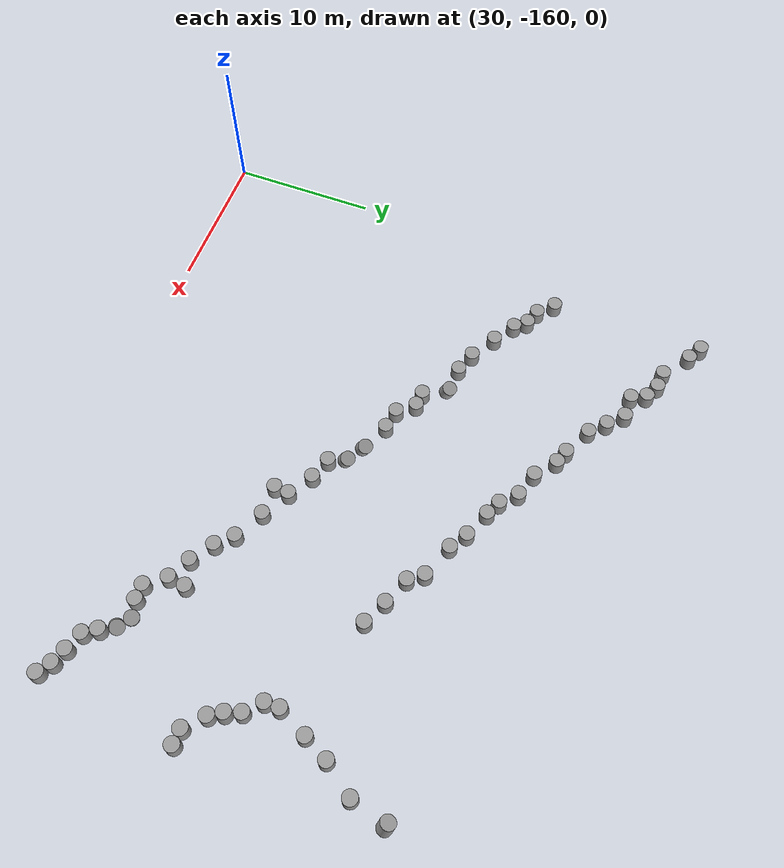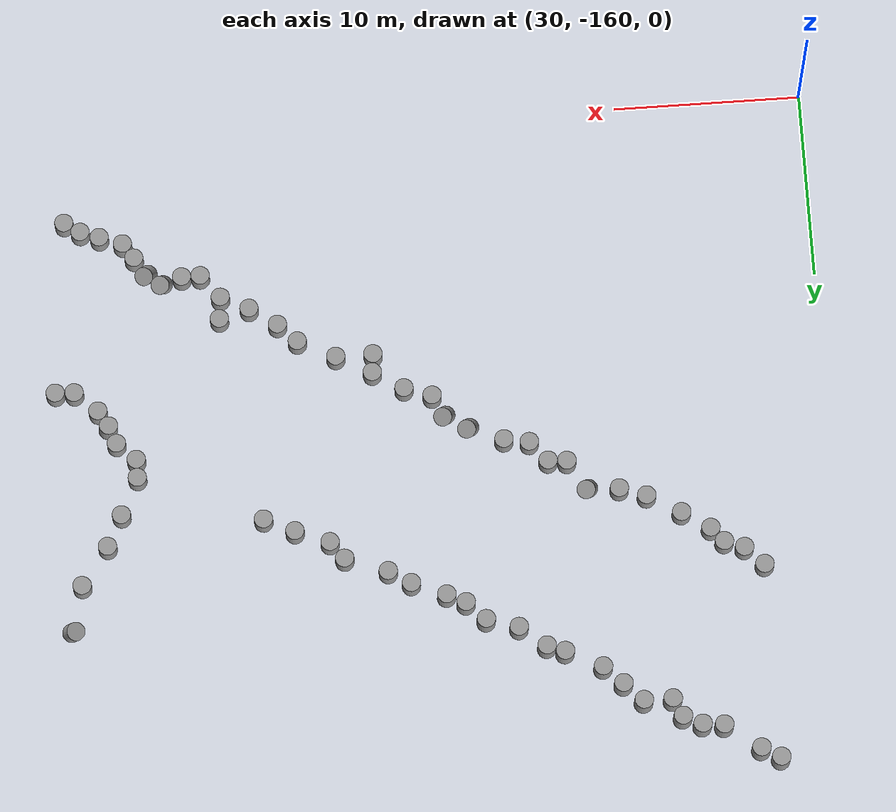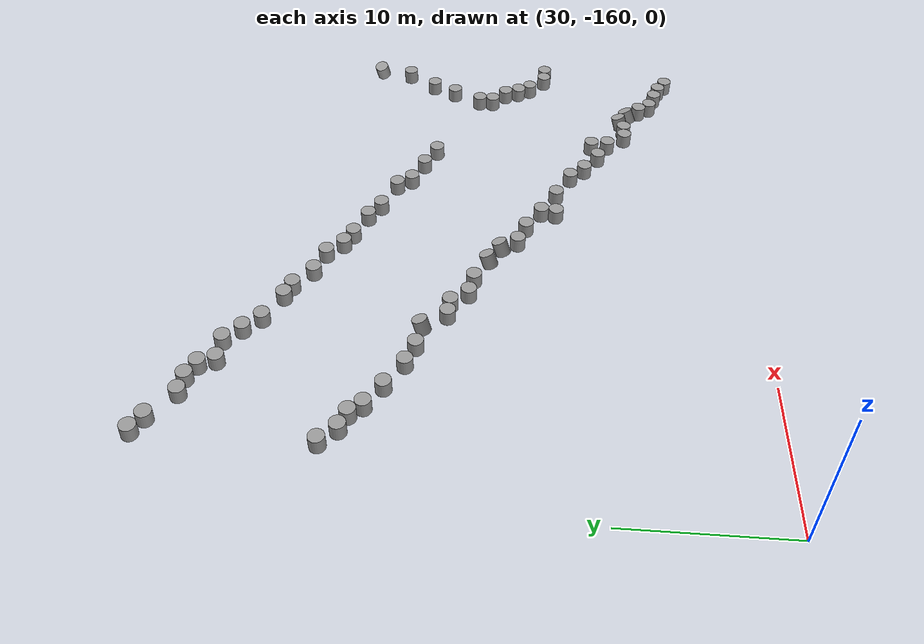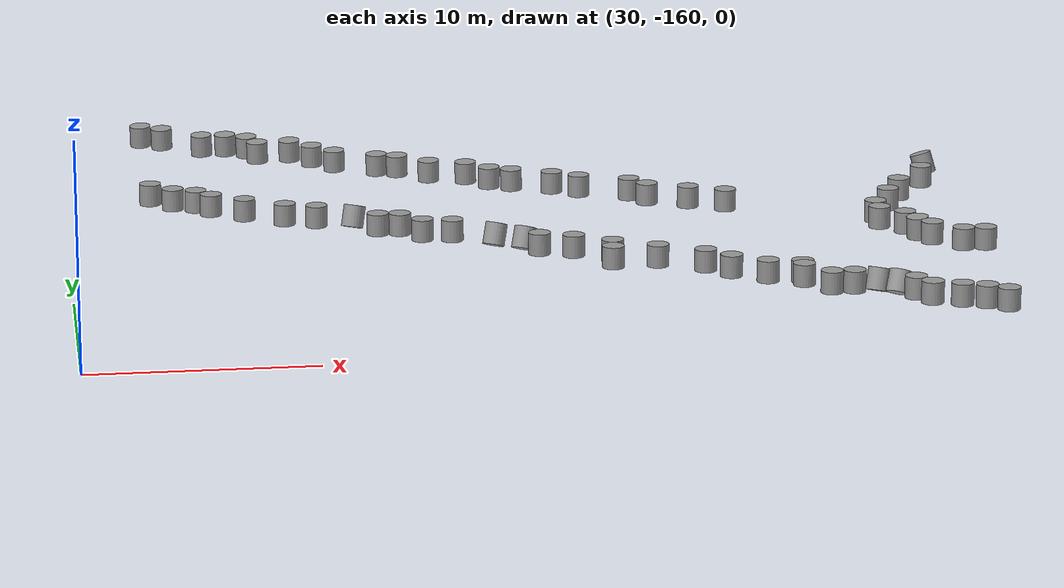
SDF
<sdf version="1.7">
 <world name="default">
  <model name="unit_cylinder_85_clone_244_clone_936">
   <pose>70.1044 -155.445 0.451298 -4.6e-05 2.7e-05 -0.003702</pose>
   <link name="link">
    <inertial>
     <mass>1</mass>
     <inertia><ixx>0.145833</ixx><ixy>0</ixy><ixz>0</ixz><iyy>0.145833</iyy><iyz>0</iyz><izz>0.125</izz></inertia>
    </inertial>
    <collision name="collision">
     <geometry><cylinder><radius>0.5</radius><length>1</length></cylinder></geometry>
    </collision>
    <visual name="visual">
     <geometry><cylinder><radius>0.5</radius><length>1</length></cylinder></geometry>
     <material>
      <script><name>Gazebo/Grey</name><uri>file://media/materials/scripts/gazebo.material</uri></script>
     </material>
    </visual>
   </link>
  </model>
  <model name="unit_cylinder_85_clone_244_clone_937">
   <pose>69.2667 -154.884 0.451287 -5.2e-05 3.3e-05 0.005897</pose>
   <link name="link">
    <inertial>
     <mass>1</mass>
     <inertia><ixx>0.145833</ixx><ixy>0</ixy><ixz>0</ixz><iyy>0.145833</iyy><iyz>0</iyz><izz>0.125</izz></inertia>
    </inertial>
    <collision name="collision">
     <geometry><cylinder><radius>0.5</radius><length>1</length></cylinder></geometry>
    </collision>
    <visual name="visual">
     <geometry><cylinder><radius>0.5</radius><length>1</length></cylinder></geometry>
     <material>
      <script><name>Gazebo/Grey</name><uri>file://media/materials/scripts/gazebo.material</uri></script>
     </material>
    </visual>
   </link>
  </model>
  <model name="unit_cylinder_85_clone_244_clone_938">
   <pose>68.2537 -154.517 0.451302 -5.2e-05 3.2e-05 0.000502</pose>
   <link name="link">
    <inertial>
     <mass>1</mass>
     <inertia><ixx>0.145833</ixx><ixy>0</ixy><ixz>0</ixz><iyy>0.145833</iyy><iyz>0</iyz><izz>0.125</izz></inertia>
    </inertial>
    <collision name="collision">
     <geometry><cylinder><radius>0.5</radius><length>1</length></cylinder></geometry>
    </collision>
    <visual name="visual">
     <geometry><cylinder><radius>0.5</radius><length>1</length></cylinder></geometry>
     <material>
      <script><name>Gazebo/Grey</name><uri>file://media/materials/scripts/gazebo.material</uri></script>
     </material>
    </visual>
   </link>
  </model>
  <model name="unit_cylinder_85_clone_244_clone_939">
   <pose>67.0253 -154.075 0.451317 -5.5e-05 3.6e-05 -0.017357</pose>
   <link name="link">
    <inertial>
     <mass>1</mass>
     <inertia><ixx>0.145833</ixx><ixy>0</ixy><ixz>0</ixz><iyy>0.145833</iyy><iyz>0</iyz><izz>0.125</izz></inertia>
    </inertial>
    <collision name="collision">
     <geometry><cylinder><radius>0.5</radius><length>1</length></cylinder></geometry>
    </collision>
    <visual name="visual">
     <geometry><cylinder><radius>0.5</radius><length>1</length></cylinder></geometry>
     <material>
      <script><name>Gazebo/Grey</name><uri>file://media/materials/scripts/gazebo.material</uri></script>
     </material>
    </visual>
   </link>
  </model>
  <model name="unit_cylinder_85_clone_244_clone_940">
   <pose>66.4603 -153.239 0.451284 -5.8e-05 3.7e-05 0.010007</pose>
   <link name="link">
    <inertial>
     <mass>1</mass>
     <inertia><ixx>0.145833</ixx><ixy>0</ixy><ixz>0</ixz><iyy>0.145833</iyy><iyz>0</iyz><izz>0.125</izz></inertia>
    </inertial>
    <collision name="collision">
     <geometry><cylinder><radius>0.5</radius><length>1</length></cylinder></geometry>
    </collision>
    <visual name="visual">
     <geometry><cylinder><radius>0.5</radius><length>1</length></cylinder></geometry>
     <material>
      <script><name>Gazebo/Grey</name><uri>file://media/materials/scripts/gazebo.material</uri></script>
     </material>
    </visual>
   </link>
  </model>
  <model name="unit_cylinder_85_clone_244_clone_941">
   <pose>65.873 -152.349 0.420681 -0.397317 0.244354 -0.050388</pose>
   <link name="link">
    <inertial>
     <mass>1</mass>
     <inertia><ixx>0.145833</ixx><ixy>0</ixy><ixz>0</ixz><iyy>0.145833</iyy><iyz>0</iyz><izz>0.125</izz></inertia>
    </inertial>
    <collision name="collision">
     <geometry><cylinder><radius>0.5</radius><length>1</length></cylinder></geometry>
    </collision>
    <visual name="visual">
     <geometry><cylinder><radius>0.5</radius><length>1</length></cylinder></geometry>
     <material>
      <script><name>Gazebo/Grey</name><uri>file://media/materials/scripts/gazebo.material</uri></script>
     </material>
    </visual>
   </link>
  </model>
  <model name="unit_cylinder_85_clone_244_clone_942">
   <pose>65.0609 -151.766 0.39062 -0.294096 0.18933 -0.005048</pose>
   <link name="link">
    <inertial>
     <mass>1</mass>
     <inertia><ixx>0.145833</ixx><ixy>0</ixy><ixz>0</ixz><iyy>0.145833</iyy><iyz>0</iyz><izz>0.125</izz></inertia>
    </inertial>
    <collision name="collision">
     <geometry><cylinder><radius>0.5</radius><length>1</length></cylinder></geometry>
    </collision>
    <visual name="visual">
     <geometry><cylinder><radius>0.5</radius><length>1</length></cylinder></geometry>
     <material>
      <script><name>Gazebo/Grey</name><uri>file://media/materials/scripts/gazebo.material</uri></script>
     </material>
    </visual>
   </link>
  </model>
  <model name="unit_cylinder_85_clone_244_clone_943">
   <pose>63.9668 -152.004 0.451306 -5.8e-05 3.6e-05 -0.003183</pose>
   <link name="link">
    <inertial>
     <mass>1</mass>
     <inertia><ixx>0.145833</ixx><ixy>0</ixy><ixz>0</ixz><iyy>0.145833</iyy><iyz>0</iyz><izz>0.125</izz></inertia>
    </inertial>
    <collision name="collision">
     <geometry><cylinder><radius>0.5</radius><length>1</length></cylinder></geometry>
    </collision>
    <visual name="visual">
     <geometry><cylinder><radius>0.5</radius><length>1</length></cylinder></geometry>
     <material>
      <script><name>Gazebo/Grey</name><uri>file://media/materials/scripts/gazebo.material</uri></script>
     </material>
    </visual>
   </link>
  </model>
  <model name="unit_cylinder_85_clone_244_clone_944">
   <pose>62.9668 -152 0.451345 -5.6e-05 2.6e-05 0.001656</pose>
   <link name="link">
    <inertial>
     <mass>1</mass>
     <inertia><ixx>0.145833</ixx><ixy>0</ixy><ixz>0</ixz><iyy>0.145833</iyy><iyz>0</iyz><izz>0.125</izz></inertia>
    </inertial>
    <collision name="collision">
     <geometry><cylinder><radius>0.5</radius><length>1</length></cylinder></geometry>
    </collision>
    <visual name="visual">
     <geometry><cylinder><radius>0.5</radius><length>1</length></cylinder></geometry>
     <material>
      <script><name>Gazebo/Grey</name><uri>file://media/materials/scripts/gazebo.material</uri></script>
     </material>
    </visual>
   </link>
  </model>
  <model name="unit_cylinder_85_clone_244_clone_945">
   <pose>62.0899 -149.582 0.249997 0 -2e-06 -0.116172</pose>
   <link name="link">
    <inertial>
     <mass>1</mass>
     <inertia><ixx>0.145833</ixx><ixy>0</ixy><ixz>0</ixz><iyy>0.145833</iyy><iyz>0</iyz><izz>0.125</izz></inertia>
    </inertial>
    <collision name="collision">
     <geometry><cylinder><radius>0.5</radius><length>1</length></cylinder></geometry>
    </collision>
    <visual name="visual">
     <geometry><cylinder><radius>0.5</radius><length>1</length></cylinder></geometry>
     <material>
      <script><name>Gazebo/Grey</name><uri>file://media/materials/scripts/gazebo.material</uri></script>
     </material>
    </visual>
   </link>
  </model>
  <model name="unit_cylinder_85_clone_244_clone_946">
   <pose>61.9632 -150.726 0.451304 -5.2e-05 2.9e-05 -0.048831</pose>
   <link name="link">
    <inertial>
     <mass>1</mass>
     <inertia><ixx>0.145833</ixx><ixy>0</ixy><ixz>0</ixz><iyy>0.145833</iyy><iyz>0</iyz><izz>0.125</izz></inertia>
    </inertial>
    <collision name="collision">
     <geometry><cylinder><radius>0.5</radius><length>1</length></cylinder></geometry>
    </collision>
    <visual name="visual">
     <geometry><cylinder><radius>0.5</radius><length>1</length></cylinder></geometry>
     <material>
      <script><name>Gazebo/Grey</name><uri>file://media/materials/scripts/gazebo.material</uri></script>
     </material>
    </visual>
   </link>
  </model>
  <model name="unit_cylinder_85_clone_244_clone_947">
   <pose>60.4681 -150 0.451305 -5.6e-05 3.1e-05 0.000501</pose>
   <link name="link">
    <inertial>
     <mass>1</mass>
     <inertia><ixx>0.145833</ixx><ixy>0</ixy><ixz>0</ixz><iyy>0.145833</iyy><iyz>0</iyz><izz>0.125</izz></inertia>
    </inertial>
    <collision name="collision">
     <geometry><cylinder><radius>0.5</radius><length>1</length></cylinder></geometry>
    </collision>
    <visual name="visual">
     <geometry><cylinder><radius>0.5</radius><length>1</length></cylinder></geometry>
     <material>
      <script><name>Gazebo/Grey</name><uri>file://media/materials/scripts/gazebo.material</uri></script>
     </material>
    </visual>
   </link>
  </model>
  <model name="unit_cylinder_85_clone_244_clone_958">
   <pose>71.1012 -146.007 0.449997 2e-06 -3e-06 0.029709</pose>
   <link name="link">
    <inertial>
     <mass>1</mass>
     <inertia><ixx>0.145833</ixx><ixy>0</ixy><ixz>0</ixz><iyy>0.145833</iyy><iyz>0</iyz><izz>0.125</izz></inertia>
    </inertial>
    <collision name="collision">
     <geometry><cylinder><radius>0.5</radius><length>1</length></cylinder></geometry>
    </collision>
    <visual name="visual">
     <geometry><cylinder><radius>0.5</radius><length>1</length></cylinder></geometry>
     <material>
      <script><name>Gazebo/Grey</name><uri>file://media/materials/scripts/gazebo.material</uri></script>
     </material>
    </visual>
   </link>
  </model>
  <model name="unit_cylinder_85_clone_244_clone_959">
   <pose>70.0932 -145.957 0.451018 -0.001661 0.001177 0.042806</pose>
   <link name="link">
    <inertial>
     <mass>1</mass>
     <inertia><ixx>0.145833</ixx><ixy>0</ixy><ixz>0</ixz><iyy>0.145833</iyy><iyz>0</iyz><izz>0.125</izz></inertia>
    </inertial>
    <collision name="collision">
     <geometry><cylinder><radius>0.5</radius><length>1</length></cylinder></geometry>
    </collision>
    <visual name="visual">
     <geometry><cylinder><radius>0.5</radius><length>1</length></cylinder></geometry>
     <material>
      <script><name>Gazebo/Grey</name><uri>file://media/materials/scripts/gazebo.material</uri></script>
     </material>
    </visual>
   </link>
  </model>
  <model name="unit_cylinder_85_clone_244_clone_960">
   <pose>68.8827 -144.859 0.450712 -0.001187 0.000809 0.003193</pose>
   <link name="link">
    <inertial>
     <mass>1</mass>
     <inertia><ixx>0.145833</ixx><ixy>0</ixy><ixz>0</ixz><iyy>0.145833</iyy><iyz>0</iyz><izz>0.125</izz></inertia>
    </inertial>
    <collision name="collision">
     <geometry><cylinder><radius>0.5</radius><length>1</length></cylinder></geometry>
    </collision>
    <visual name="visual">
     <geometry><cylinder><radius>0.5</radius><length>1</length></cylinder></geometry>
     <material>
      <script><name>Gazebo/Grey</name><uri>file://media/materials/scripts/gazebo.material</uri></script>
     </material>
    </visual>
   </link>
  </model>
  <model name="unit_cylinder_85_clone_244_clone_961">
   <pose>68.3892 -143.989 0.441867 0.031325 -0.058556 0.020132</pose>
   <link name="link">
    <inertial>
     <mass>1</mass>
     <inertia><ixx>0.145833</ixx><ixy>0</ixy><ixz>0</ixz><iyy>0.145833</iyy><iyz>0</iyz><izz>0.125</izz></inertia>
    </inertial>
    <collision name="collision">
     <geometry><cylinder><radius>0.5</radius><length>1</length></cylinder></geometry>
    </collision>
    <visual name="visual">
     <geometry><cylinder><radius>0.5</radius><length>1</length></cylinder></geometry>
     <material>
      <script><name>Gazebo/Grey</name><uri>file://media/materials/scripts/gazebo.material</uri></script>
     </material>
    </visual>
   </link>
  </model>
  <model name="unit_cylinder_85_clone_244_clone_962">
   <pose>68 -143 0.450014 6.3e-05 -5.2e-05 0.000516</pose>
   <link name="link">
    <inertial>
     <mass>1</mass>
     <inertia><ixx>0.145833</ixx><ixy>0</ixy><ixz>0</ixz><iyy>0.145833</iyy><iyz>0</iyz><izz>0.125</izz></inertia>
    </inertial>
    <collision name="collision">
     <geometry><cylinder><radius>0.5</radius><length>1</length></cylinder></geometry>
    </collision>
    <visual name="visual">
     <geometry><cylinder><radius>0.5</radius><length>1</length></cylinder></geometry>
     <material>
      <script><name>Gazebo/Grey</name><uri>file://media/materials/scripts/gazebo.material</uri></script>
     </material>
    </visual>
   </link>
  </model>
  <model name="unit_cylinder_85_clone_244_clone_963">
   <pose>66.9961 -142.043 0.450262 0.00052 6e-05 -0.00878</pose>
   <link name="link">
    <inertial>
     <mass>1</mass>
     <inertia><ixx>0.145833</ixx><ixy>0</ixy><ixz>0</ixz><iyy>0.145833</iyy><iyz>0</iyz><izz>0.125</izz></inertia>
    </inertial>
    <collision name="collision">
     <geometry><cylinder><radius>0.5</radius><length>1</length></cylinder></geometry>
    </collision>
    <visual name="visual">
     <geometry><cylinder><radius>0.5</radius><length>1</length></cylinder></geometry>
     <material>
      <script><name>Gazebo/Grey</name><uri>file://media/materials/scripts/gazebo.material</uri></script>
     </material>
    </visual>
   </link>
  </model>
  <model name="unit_cylinder_85_clone_244_clone_964">
   <pose>66.9988 -141.043 0.450886 0.000572 0.001453 0.014888</pose>
   <link name="link">
    <inertial>
     <mass>1</mass>
     <inertia><ixx>0.145833</ixx><ixy>0</ixy><ixz>0</ixz><iyy>0.145833</iyy><iyz>0</iyz><izz>0.125</izz></inertia>
    </inertial>
    <collision name="collision">
     <geometry><cylinder><radius>0.5</radius><length>1</length></cylinder></geometry>
    </collision>
    <visual name="visual">
     <geometry><cylinder><radius>0.5</radius><length>1</length></cylinder></geometry>
     <material>
      <script><name>Gazebo/Grey</name><uri>file://media/materials/scripts/gazebo.material</uri></script>
     </material>
    </visual>
   </link>
  </model>
  <model name="unit_cylinder_85_clone_244_clone_965">
   <pose>67.9624 -139.047 0.451036 0.000827 0.00122 0.07634</pose>
   <link name="link">
    <inertial>
     <mass>1</mass>
     <inertia><ixx>0.145833</ixx><ixy>0</ixy><ixz>0</ixz><iyy>0.145833</iyy><iyz>0</iyz><izz>0.125</izz></inertia>
    </inertial>
    <collision name="collision">
     <geometry><cylinder><radius>0.5</radius><length>1</length></cylinder></geometry>
    </collision>
    <visual name="visual">
     <geometry><cylinder><radius>0.5</radius><length>1</length></cylinder></geometry>
     <material>
      <script><name>Gazebo/Grey</name><uri>file://media/materials/scripts/gazebo.material</uri></script>
     </material>
    </visual>
   </link>
  </model>
  <model name="unit_cylinder_85_clone_244_clone_966">
   <pose>68.8029 -137.37 0.451198 0.000771 0.001204 0.047365</pose>
   <link name="link">
    <inertial>
     <mass>1</mass>
     <inertia><ixx>0.145833</ixx><ixy>0</ixy><ixz>0</ixz><iyy>0.145833</iyy><iyz>0</iyz><izz>0.125</izz></inertia>
    </inertial>
    <collision name="collision">
     <geometry><cylinder><radius>0.5</radius><length>1</length></cylinder></geometry>
    </collision>
    <visual name="visual">
     <geometry><cylinder><radius>0.5</radius><length>1</length></cylinder></geometry>
     <material>
      <script><name>Gazebo/Grey</name><uri>file://media/materials/scripts/gazebo.material</uri></script>
     </material>
    </visual>
   </link>
  </model>
  <model name="unit_cylinder_85_clone_244_clone_967">
   <pose>70.2734 -135.322 0.451803 -0.000692 -0.001228 0.003217</pose>
   <link name="link">
    <inertial>
     <mass>1</mass>
     <inertia><ixx>0.145833</ixx><ixy>0</ixy><ixz>0</ixz><iyy>0.145833</iyy><iyz>0</iyz><izz>0.125</izz></inertia>
    </inertial>
    <collision name="collision">
     <geometry><cylinder><radius>0.5</radius><length>1</length></cylinder></geometry>
    </collision>
    <visual name="visual">
     <geometry><cylinder><radius>0.5</radius><length>1</length></cylinder></geometry>
     <material>
      <script><name>Gazebo/Grey</name><uri>file://media/materials/scripts/gazebo.material</uri></script>
     </material>
    </visual>
   </link>
  </model>
  <model name="unit_cylinder_85_clone_244_clone_969">
   <pose>70.8729 -132.926 0.378687 -0.158555 -0.267516 0.021613</pose>
   <link name="link">
    <inertial>
     <mass>1</mass>
     <inertia><ixx>0.145833</ixx><ixy>0</ixy><ixz>0</ixz><iyy>0.145833</iyy><iyz>0</iyz><izz>0.125</izz></inertia>
    </inertial>
    <collision name="collision">
     <geometry><cylinder><radius>0.5</radius><length>1</length></cylinder></geometry>
    </collision>
    <visual name="visual">
     <geometry><cylinder><radius>0.5</radius><length>1</length></cylinder></geometry>
     <material>
      <script><name>Gazebo/Grey</name><uri>file://media/materials/scripts/gazebo.material</uri></script>
     </material>
    </visual>
   </link>
  </model>
  <model name="unit_cylinder_85_clone_244_clone_985">
   <pose>60.4316 -138.288 0.451299 0.000467 -4e-06 0.000508</pose>
   <link name="link">
    <inertial>
     <mass>1</mass>
     <inertia><ixx>0.145833</ixx><ixy>0</ixy><ixz>0</ixz><iyy>0.145833</iyy><iyz>0</iyz><izz>0.125</izz></inertia>
    </inertial>
    <collision name="collision">
     <geometry><cylinder><radius>0.5</radius><length>1</length></cylinder></geometry>
    </collision>
    <visual name="visual">
     <geometry><cylinder><radius>0.5</radius><length>1</length></cylinder></geometry>
     <material>
      <script><name>Gazebo/Grey</name><uri>file://media/materials/scripts/gazebo.material</uri></script>
     </material>
    </visual>
   </link>
  </model>
  <model name="unit_cylinder_85_clone_244_clone_986">
   <pose>58.8046 -137.53 0.451303 1.9e-05 -1.7e-05 0.000499</pose>
   <link name="link">
    <inertial>
     <mass>1</mass>
     <inertia><ixx>0.145833</ixx><ixy>0</ixy><ixz>0</ixz><iyy>0.145833</iyy><iyz>0</iyz><izz>0.125</izz></inertia>
    </inertial>
    <collision name="collision">
     <geometry><cylinder><radius>0.5</radius><length>1</length></cylinder></geometry>
    </collision>
    <visual name="visual">
     <geometry><cylinder><radius>0.5</radius><length>1</length></cylinder></geometry>
     <material>
      <script><name>Gazebo/Grey</name><uri>file://media/materials/scripts/gazebo.material</uri></script>
     </material>
    </visual>
   </link>
  </model>
  <model name="unit_cylinder_85_clone_244_clone_987">
   <pose>56.9805 -136.8 0.451285 3.4e-05 -1.9e-05 0.000499</pose>
   <link name="link">
    <inertial>
     <mass>1</mass>
     <inertia><ixx>0.145833</ixx><ixy>0</ixy><ixz>0</ixz><iyy>0.145833</iyy><iyz>0</iyz><izz>0.125</izz></inertia>
    </inertial>
    <collision name="collision">
     <geometry><cylinder><radius>0.5</radius><length>1</length></cylinder></geometry>
    </collision>
    <visual name="visual">
     <geometry><cylinder><radius>0.5</radius><length>1</length></cylinder></geometry>
     <material>
      <script><name>Gazebo/Grey</name><uri>file://media/materials/scripts/gazebo.material</uri></script>
     </material>
    </visual>
   </link>
  </model>
  <model name="unit_cylinder_85_clone_244_clone_988">
   <pose>56.262 -135.845 0.451303 2.8e-05 -1e-05 0.000486</pose>
   <link name="link">
    <inertial>
     <mass>1</mass>
     <inertia><ixx>0.145833</ixx><ixy>0</ixy><ixz>0</ixz><iyy>0.145833</iyy><iyz>0</iyz><izz>0.125</izz></inertia>
    </inertial>
    <collision name="collision">
     <geometry><cylinder><radius>0.5</radius><length>1</length></cylinder></geometry>
    </collision>
    <visual name="visual">
     <geometry><cylinder><radius>0.5</radius><length>1</length></cylinder></geometry>
     <material>
      <script><name>Gazebo/Grey</name><uri>file://media/materials/scripts/gazebo.material</uri></script>
     </material>
    </visual>
   </link>
  </model>
  <model name="unit_cylinder_85_clone_244_clone_989">
   <pose>54 -135 0.451292 3.8e-05 -1.8e-05 0.000511</pose>
   <link name="link">
    <inertial>
     <mass>1</mass>
     <inertia><ixx>0.145833</ixx><ixy>0</ixy><ixz>0</ixz><iyy>0.145833</iyy><iyz>0</iyz><izz>0.125</izz></inertia>
    </inertial>
    <collision name="collision">
     <geometry><cylinder><radius>0.5</radius><length>1</length></cylinder></geometry>
    </collision>
    <visual name="visual">
     <geometry><cylinder><radius>0.5</radius><length>1</length></cylinder></geometry>
     <material>
      <script><name>Gazebo/Grey</name><uri>file://media/materials/scripts/gazebo.material</uri></script>
     </material>
    </visual>
   </link>
  </model>
  <model name="unit_cylinder_85_clone_244_clone_990">
   <pose>52.8144 -134.258 0.451295 4e-05 -1.9e-05 0.000501</pose>
   <link name="link">
    <inertial>
     <mass>1</mass>
     <inertia><ixx>0.145833</ixx><ixy>0</ixy><ixz>0</ixz><iyy>0.145833</iyy><iyz>0</iyz><izz>0.125</izz></inertia>
    </inertial>
    <collision name="collision">
     <geometry><cylinder><radius>0.5</radius><length>1</length></cylinder></geometry>
    </collision>
    <visual name="visual">
     <geometry><cylinder><radius>0.5</radius><length>1</length></cylinder></geometry>
     <material>
      <script><name>Gazebo/Grey</name><uri>file://media/materials/scripts/gazebo.material</uri></script>
     </material>
    </visual>
   </link>
  </model>
  <model name="unit_cylinder_85_clone_244_clone_991">
   <pose>50.9919 -133.503 0.44186 0.021075 -0.014843 0.000362</pose>
   <link name="link">
    <inertial>
     <mass>1</mass>
     <inertia><ixx>0.145833</ixx><ixy>0</ixy><ixz>0</ixz><iyy>0.145833</iyy><iyz>0</iyz><izz>0.125</izz></inertia>
    </inertial>
    <collision name="collision">
     <geometry><cylinder><radius>0.5</radius><length>1</length></cylinder></geometry>
    </collision>
    <visual name="visual">
     <geometry><cylinder><radius>0.5</radius><length>1</length></cylinder></geometry>
     <material>
      <script><name>Gazebo/Grey</name><uri>file://media/materials/scripts/gazebo.material</uri></script>
     </material>
    </visual>
   </link>
  </model>
  <model name="unit_cylinder_85_clone_244_clone_992">
   <pose>49.9922 -133.011 0.437359 0.021263 -0.015052 0.000321</pose>
   <link name="link">
    <inertial>
     <mass>1</mass>
     <inertia><ixx>0.145833</ixx><ixy>0</ixy><ixz>0</ixz><iyy>0.145833</iyy><iyz>0</iyz><izz>0.125</izz></inertia>
    </inertial>
    <collision name="collision">
     <geometry><cylinder><radius>0.5</radius><length>1</length></cylinder></geometry>
    </collision>
    <visual name="visual">
     <geometry><cylinder><radius>0.5</radius><length>1</length></cylinder></geometry>
     <material>
      <script><name>Gazebo/Grey</name><uri>file://media/materials/scripts/gazebo.material</uri></script>
     </material>
    </visual>
   </link>
  </model>
  <model name="unit_cylinder_85_clone_244_clone_993">
   <pose>48.9902 -132.014 0.443056 0.024283 -0.01677 0.000363</pose>
   <link name="link">
    <inertial>
     <mass>1</mass>
     <inertia><ixx>0.145833</ixx><ixy>0</ixy><ixz>0</ixz><iyy>0.145833</iyy><iyz>0</iyz><izz>0.125</izz></inertia>
    </inertial>
    <collision name="collision">
     <geometry><cylinder><radius>0.5</radius><length>1</length></cylinder></geometry>
    </collision>
    <visual name="visual">
     <geometry><cylinder><radius>0.5</radius><length>1</length></cylinder></geometry>
     <material>
      <script><name>Gazebo/Grey</name><uri>file://media/materials/scripts/gazebo.material</uri></script>
     </material>
    </visual>
   </link>
  </model>
  <model name="unit_cylinder_85_clone_244_clone_994">
   <pose>47.2847 -131.471 0.429378 0.021304 -0.015045 -0.000695</pose>
   <link name="link">
    <inertial>
     <mass>1</mass>
     <inertia><ixx>0.145833</ixx><ixy>0</ixy><ixz>0</ixz><iyy>0.145833</iyy><iyz>0</iyz><izz>0.125</izz></inertia>
    </inertial>
    <collision name="collision">
     <geometry><cylinder><radius>0.5</radius><length>1</length></cylinder></geometry>
    </collision>
    <visual name="visual">
     <geometry><cylinder><radius>0.5</radius><length>1</length></cylinder></geometry>
     <material>
      <script><name>Gazebo/Grey</name><uri>file://media/materials/scripts/gazebo.material</uri></script>
     </material>
    </visual>
   </link>
  </model>
  <model name="unit_cylinder_85_clone_244_clone_995">
   <pose>59 -149 0.451303 -4.8e-05 2.8e-05 0.000502</pose>
   <link name="link">
    <inertial>
     <mass>1</mass>
     <inertia><ixx>0.145833</ixx><ixy>0</ixy><ixz>0</ixz><iyy>0.145833</iyy><iyz>0</iyz><izz>0.125</izz></inertia>
    </inertial>
    <collision name="collision">
     <geometry><cylinder><radius>0.5</radius><length>1</length></cylinder></geometry>
    </collision>
    <visual name="visual">
     <geometry><cylinder><radius>0.5</radius><length>1</length></cylinder></geometry>
     <material>
      <script><name>Gazebo/Grey</name><uri>file://media/materials/scripts/gazebo.material</uri></script>
     </material>
    </visual>
   </link>
  </model>
  <model name="unit_cylinder_85_clone_244_clone_996">
   <pose>58 -148 0.451291 -8.6e-05 5.5e-05 0.000425</pose>
   <link name="link">
    <inertial>
     <mass>1</mass>
     <inertia><ixx>0.145833</ixx><ixy>0</ixy><ixz>0</ixz><iyy>0.145833</iyy><iyz>0</iyz><izz>0.125</izz></inertia>
    </inertial>
    <collision name="collision">
     <geometry><cylinder><radius>0.5</radius><length>1</length></cylinder></geometry>
    </collision>
    <visual name="visual">
     <geometry><cylinder><radius>0.5</radius><length>1</length></cylinder></geometry>
     <material>
      <script><name>Gazebo/Grey</name><uri>file://media/materials/scripts/gazebo.material</uri></script>
     </material>
    </visual>
   </link>
  </model>
  <model name="unit_cylinder_85_clone_244_clone_997">
   <pose>56 -147 0.45129 -6.8e-05 4.5e-05 0.000424</pose>
   <link name="link">
    <inertial>
     <mass>1</mass>
     <inertia><ixx>0.145833</ixx><ixy>0</ixy><ixz>0</ixz><iyy>0.145833</iyy><iyz>0</iyz><izz>0.125</izz></inertia>
    </inertial>
    <collision name="collision">
     <geometry><cylinder><radius>0.5</radius><length>1</length></cylinder></geometry>
    </collision>
    <visual name="visual">
     <geometry><cylinder><radius>0.5</radius><length>1</length></cylinder></geometry>
     <material>
      <script><name>Gazebo/Grey</name><uri>file://media/materials/scripts/gazebo.material</uri></script>
     </material>
    </visual>
   </link>
  </model>
  <model name="unit_cylinder_85_clone_244_clone_998">
   <pose>54.0008 -147.001 0.451416 -8.5e-05 7.8e-05 -0.020251</pose>
   <link name="link">
    <inertial>
     <mass>1</mass>
     <inertia><ixx>0.145833</ixx><ixy>0</ixy><ixz>0</ixz><iyy>0.145833</iyy><iyz>0</iyz><izz>0.125</izz></inertia>
    </inertial>
    <collision name="collision">
     <geometry><cylinder><radius>0.5</radius><length>1</length></cylinder></geometry>
    </collision>
    <visual name="visual">
     <geometry><cylinder><radius>0.5</radius><length>1</length></cylinder></geometry>
     <material>
      <script><name>Gazebo/Grey</name><uri>file://media/materials/scripts/gazebo.material</uri></script>
     </material>
    </visual>
   </link>
  </model>
  <model name="unit_cylinder_85_clone_244_clone_999">
   <pose>52.4767 -144.999 0.451029 -0.000894 -0.001192 0.001103</pose>
   <link name="link">
    <inertial>
     <mass>1</mass>
     <inertia><ixx>0.145833</ixx><ixy>0</ixy><ixz>0</ixz><iyy>0.145833</iyy><iyz>0</iyz><izz>0.125</izz></inertia>
    </inertial>
    <collision name="collision">
     <geometry><cylinder><radius>0.5</radius><length>1</length></cylinder></geometry>
    </collision>
    <visual name="visual">
     <geometry><cylinder><radius>0.5</radius><length>1</length></cylinder></geometry>
     <material>
      <script><name>Gazebo/Grey</name><uri>file://media/materials/scripts/gazebo.material</uri></script>
     </material>
    </visual>
   </link>
  </model>
  <model name="unit_cylinder_85_clone_244_clone_1000">
   <pose>50.9994 -144.489 0.448817 -0.000892 -0.001177 0.00049</pose>
   <link name="link">
    <inertial>
     <mass>1</mass>
     <inertia><ixx>0.145833</ixx><ixy>0</ixy><ixz>0</ixz><iyy>0.145833</iyy><iyz>0</iyz><izz>0.125</izz></inertia>
    </inertial>
    <collision name="collision">
     <geometry><cylinder><radius>0.5</radius><length>1</length></cylinder></geometry>
    </collision>
    <visual name="visual">
     <geometry><cylinder><radius>0.5</radius><length>1</length></cylinder></geometry>
     <material>
      <script><name>Gazebo/Grey</name><uri>file://media/materials/scripts/gazebo.material</uri></script>
     </material>
    </visual>
   </link>
  </model>
  <model name="unit_cylinder_85_clone_244_clone_1001">
   <pose>50.4193 -143.417 0.405294 -0.347873 0.20203 -0.044397</pose>
   <link name="link">
    <inertial>
     <mass>1</mass>
     <inertia><ixx>0.145833</ixx><ixy>0</ixy><ixz>0</ixz><iyy>0.145833</iyy><iyz>0</iyz><izz>0.125</izz></inertia>
    </inertial>
    <collision name="collision">
     <geometry><cylinder><radius>0.5</radius><length>1</length></cylinder></geometry>
    </collision>
    <visual name="visual">
     <geometry><cylinder><radius>0.5</radius><length>1</length></cylinder></geometry>
     <material>
      <script><name>Gazebo/Grey</name><uri>file://media/materials/scripts/gazebo.material</uri></script>
     </material>
    </visual>
   </link>
  </model>
  <model name="unit_cylinder_85_clone_244_clone_1002">
   <pose>49.1919 -142.654 0.401357 -0.334473 0.195689 -0.03955</pose>
   <link name="link">
    <inertial>
     <mass>1</mass>
     <inertia><ixx>0.145833</ixx><ixy>0</ixy><ixz>0</ixz><iyy>0.145833</iyy><iyz>0</iyz><izz>0.125</izz></inertia>
    </inertial>
    <collision name="collision">
     <geometry><cylinder><radius>0.5</radius><length>1</length></cylinder></geometry>
    </collision>
    <visual name="visual">
     <geometry><cylinder><radius>0.5</radius><length>1</length></cylinder></geometry>
     <material>
      <script><name>Gazebo/Grey</name><uri>file://media/materials/scripts/gazebo.material</uri></script>
     </material>
    </visual>
   </link>
  </model>
  <model name="unit_cylinder_85_clone_244_clone_1003">
   <pose>54.1018 -145.993 0.451293 -0.000143 6.8e-05 -0.003349</pose>
   <link name="link">
    <inertial>
     <mass>1</mass>
     <inertia><ixx>0.145833</ixx><ixy>0</ixy><ixz>0</ixz><iyy>0.145833</iyy><iyz>0</iyz><izz>0.125</izz></inertia>
    </inertial>
    <collision name="collision">
     <geometry><cylinder><radius>0.5</radius><length>1</length></cylinder></geometry>
    </collision>
    <visual name="visual">
     <geometry><cylinder><radius>0.5</radius><length>1</length></cylinder></geometry>
     <material>
      <script><name>Gazebo/Grey</name><uri>file://media/materials/scripts/gazebo.material</uri></script>
     </material>
    </visual>
   </link>
  </model>
  <model name="unit_cylinder_85_clone_244_clone_1004">
   <pose>47.3412 -141.809 0.441528 -0.002594 -0.00028 0.000532</pose>
   <link name="link">
    <inertial>
     <mass>1</mass>
     <inertia><ixx>0.145833</ixx><ixy>0</ixy><ixz>0</ixz><iyy>0.145833</iyy><iyz>0</iyz><izz>0.125</izz></inertia>
    </inertial>
    <collision name="collision">
     <geometry><cylinder><radius>0.5</radius><length>1</length></cylinder></geometry>
    </collision>
    <visual name="visual">
     <geometry><cylinder><radius>0.5</radius><length>1</length></cylinder></geometry>
     <material>
      <script><name>Gazebo/Grey</name><uri>file://media/materials/scripts/gazebo.material</uri></script>
     </material>
    </visual>
   </link>
  </model>
  <model name="unit_cylinder_85_clone_244_clone_1005">
   <pose>45.9994 -141.567 0.440315 -0.000894 -0.001176 0.000557</pose>
   <link name="link">
    <inertial>
     <mass>1</mass>
     <inertia><ixx>0.145833</ixx><ixy>0</ixy><ixz>0</ixz><iyy>0.145833</iyy><iyz>0</iyz><izz>0.125</izz></inertia>
    </inertial>
    <collision name="collision">
     <geometry><cylinder><radius>0.5</radius><length>1</length></cylinder></geometry>
    </collision>
    <visual name="visual">
     <geometry><cylinder><radius>0.5</radius><length>1</length></cylinder></geometry>
     <material>
      <script><name>Gazebo/Grey</name><uri>file://media/materials/scripts/gazebo.material</uri></script>
     </material>
    </visual>
   </link>
  </model>
  <model name="unit_cylinder_85_clone_244_clone_1006">
   <pose>45.0738 -140.472 0.437473 -0.00275 8.8e-05 0.098253</pose>
   <link name="link">
    <inertial>
     <mass>1</mass>
     <inertia><ixx>0.145833</ixx><ixy>0</ixy><ixz>0</ixz><iyy>0.145833</iyy><iyz>0</iyz><izz>0.125</izz></inertia>
    </inertial>
    <collision name="collision">
     <geometry><cylinder><radius>0.5</radius><length>1</length></cylinder></geometry>
    </collision>
    <visual name="visual">
     <geometry><cylinder><radius>0.5</radius><length>1</length></cylinder></geometry>
     <material>
      <script><name>Gazebo/Grey</name><uri>file://media/materials/scripts/gazebo.material</uri></script>
     </material>
    </visual>
   </link>
  </model>
  <model name="unit_cylinder_85_clone_244_clone_1007">
   <pose>44.0736 -140.383 0.436999 -0.000849 -0.001202 -0.037527</pose>
   <link name="link">
    <inertial>
     <mass>1</mass>
     <inertia><ixx>0.145833</ixx><ixy>0</ixy><ixz>0</ixz><iyy>0.145833</iyy><iyz>0</iyz><izz>0.125</izz></inertia>
    </inertial>
    <collision name="collision">
     <geometry><cylinder><radius>0.5</radius><length>1</length></cylinder></geometry>
    </collision>
    <visual name="visual">
     <geometry><cylinder><radius>0.5</radius><length>1</length></cylinder></geometry>
     <material>
      <script><name>Gazebo/Grey</name><uri>file://media/materials/scripts/gazebo.material</uri></script>
     </material>
    </visual>
   </link>
  </model>
  <model name="unit_cylinder_85_clone_244_clone_1008">
   <pose>43.0854 -138.861 0.386019 -0.286954 0.171642 -0.024291</pose>
   <link name="link">
    <inertial>
     <mass>1</mass>
     <inertia><ixx>0.145833</ixx><ixy>0</ixy><ixz>0</ixz><iyy>0.145833</iyy><iyz>0</iyz><izz>0.125</izz></inertia>
    </inertial>
    <collision name="collision">
     <geometry><cylinder><radius>0.5</radius><length>1</length></cylinder></geometry>
    </collision>
    <visual name="visual">
     <geometry><cylinder><radius>0.5</radius><length>1</length></cylinder></geometry>
     <material>
      <script><name>Gazebo/Grey</name><uri>file://media/materials/scripts/gazebo.material</uri></script>
     </material>
    </visual>
   </link>
  </model>
  <model name="unit_cylinder_85_clone_244_clone_1009">
   <pose>41.3978 -138.683 0.432064 -0.002847 -9.2e-05 0.00049</pose>
   <link name="link">
    <inertial>
     <mass>1</mass>
     <inertia><ixx>0.145833</ixx><ixy>0</ixy><ixz>0</ixz><iyy>0.145833</iyy><iyz>0</iyz><izz>0.125</izz></inertia>
    </inertial>
    <collision name="collision">
     <geometry><cylinder><radius>0.5</radius><length>1</length></cylinder></geometry>
    </collision>
    <visual name="visual">
     <geometry><cylinder><radius>0.5</radius><length>1</length></cylinder></geometry>
     <material>
      <script><name>Gazebo/Grey</name><uri>file://media/materials/scripts/gazebo.material</uri></script>
     </material>
    </visual>
   </link>
  </model>
  <model name="unit_cylinder_85_clone_244_clone_1010">
   <pose>38.1914 -137.141 0.427251 -0.001966 -0.000579 0.0004</pose>
   <link name="link">
    <inertial>
     <mass>1</mass>
     <inertia><ixx>0.145833</ixx><ixy>0</ixy><ixz>0</ixz><iyy>0.145833</iyy><iyz>0</iyz><izz>0.125</izz></inertia>
    </inertial>
    <collision name="collision">
     <geometry><cylinder><radius>0.5</radius><length>1</length></cylinder></geometry>
    </collision>
    <visual name="visual">
     <geometry><cylinder><radius>0.5</radius><length>1</length></cylinder></geometry>
     <material>
      <script><name>Gazebo/Grey</name><uri>file://media/materials/scripts/gazebo.material</uri></script>
     </material>
    </visual>
   </link>
  </model>
  <model name="unit_cylinder_85_clone_244_clone_1011">
   <pose>39.9746 -138.19 0.430318 -0.001731 -0.000709 0.000444</pose>
   <link name="link">
    <inertial>
     <mass>1</mass>
     <inertia><ixx>0.145833</ixx><ixy>0</ixy><ixz>0</ixz><iyy>0.145833</iyy><iyz>0</iyz><izz>0.125</izz></inertia>
    </inertial>
    <collision name="collision">
     <geometry><cylinder><radius>0.5</radius><length>1</length></cylinder></geometry>
    </collision>
    <visual name="visual">
     <geometry><cylinder><radius>0.5</radius><length>1</length></cylinder></geometry>
     <material>
      <script><name>Gazebo/Grey</name><uri>file://media/materials/scripts/gazebo.material</uri></script>
     </material>
    </visual>
   </link>
  </model>
  <model name="unit_cylinder_85_clone_244_clone_1012">
   <pose>45.8821 -130.351 0.434 0.029409 -0.018506 -0.012927</pose>
   <link name="link">
    <inertial>
     <mass>1</mass>
     <inertia><ixx>0.145833</ixx><ixy>0</ixy><ixz>0</ixz><iyy>0.145833</iyy><iyz>0</iyz><izz>0.125</izz></inertia>
    </inertial>
    <collision name="collision">
     <geometry><cylinder><radius>0.5</radius><length>1</length></cylinder></geometry>
    </collision>
    <visual name="visual">
     <geometry><cylinder><radius>0.5</radius><length>1</length></cylinder></geometry>
     <material>
      <script><name>Gazebo/Grey</name><uri>file://media/materials/scripts/gazebo.material</uri></script>
     </material>
    </visual>
   </link>
  </model>
  <model name="unit_cylinder_85_clone_244_clone_1013">
   <pose>44.9386 -129.992 0.427287 0.024758 -0.016901 -0.003876</pose>
   <link name="link">
    <inertial>
     <mass>1</mass>
     <inertia><ixx>0.145833</ixx><ixy>0</ixy><ixz>0</ixz><iyy>0.145833</iyy><iyz>0</iyz><izz>0.125</izz></inertia>
    </inertial>
    <collision name="collision">
     <geometry><cylinder><radius>0.5</radius><length>1</length></cylinder></geometry>
    </collision>
    <visual name="visual">
     <geometry><cylinder><radius>0.5</radius><length>1</length></cylinder></geometry>
     <material>
      <script><name>Gazebo/Grey</name><uri>file://media/materials/scripts/gazebo.material</uri></script>
     </material>
    </visual>
   </link>
  </model>
  <model name="unit_cylinder_85_clone_244_clone_1014">
   <pose>42.9904 -129.014 0.41929 0.027187 -0.018382 -0.000921</pose>
   <link name="link">
    <inertial>
     <mass>1</mass>
     <inertia><ixx>0.145833</ixx><ixy>0</ixy><ixz>0</ixz><iyy>0.145833</iyy><iyz>0</iyz><izz>0.125</izz></inertia>
    </inertial>
    <collision name="collision">
     <geometry><cylinder><radius>0.5</radius><length>1</length></cylinder></geometry>
    </collision>
    <visual name="visual">
     <geometry><cylinder><radius>0.5</radius><length>1</length></cylinder></geometry>
     <material>
      <script><name>Gazebo/Grey</name><uri>file://media/materials/scripts/gazebo.material</uri></script>
     </material>
    </visual>
   </link>
  </model>
  <model name="unit_cylinder_85_clone_244_clone_1015">
   <pose>41.9875 -128.021 0.432127 0.041938 -0.023909 0.00113</pose>
   <link name="link">
    <inertial>
     <mass>1</mass>
     <inertia><ixx>0.145833</ixx><ixy>0</ixy><ixz>0</ixz><iyy>0.145833</iyy><iyz>0</iyz><izz>0.125</izz></inertia>
    </inertial>
    <collision name="collision">
     <geometry><cylinder><radius>0.5</radius><length>1</length></cylinder></geometry>
    </collision>
    <visual name="visual">
     <geometry><cylinder><radius>0.5</radius><length>1</length></cylinder></geometry>
     <material>
      <script><name>Gazebo/Grey</name><uri>file://media/materials/scripts/gazebo.material</uri></script>
     </material>
    </visual>
   </link>
  </model>
  <model name="unit_cylinder_85_clone_244_clone_1016">
   <pose>40.9844 -127.027 0.449718 0.051279 -0.029153 -0.00017</pose>
   <link name="link">
    <inertial>
     <mass>1</mass>
     <inertia><ixx>0.145833</ixx><ixy>0</ixy><ixz>0</ixz><iyy>0.145833</iyy><iyz>0</iyz><izz>0.125</izz></inertia>
    </inertial>
    <collision name="collision">
     <geometry><cylinder><radius>0.5</radius><length>1</length></cylinder></geometry>
    </collision>
    <visual name="visual">
     <geometry><cylinder><radius>0.5</radius><length>1</length></cylinder></geometry>
     <material>
      <script><name>Gazebo/Grey</name><uri>file://media/materials/scripts/gazebo.material</uri></script>
     </material>
    </visual>
   </link>
  </model>
  <model name="unit_cylinder_85_clone_244_clone_1017">
   <pose>39.4455 -127.02 0.412228 0.037993 -0.024525 -0.000886</pose>
   <link name="link">
    <inertial>
     <mass>1</mass>
     <inertia><ixx>0.145833</ixx><ixy>0</ixy><ixz>0</ixz><iyy>0.145833</iyy><iyz>0</iyz><izz>0.125</izz></inertia>
    </inertial>
    <collision name="collision">
     <geometry><cylinder><radius>0.5</radius><length>1</length></cylinder></geometry>
    </collision>
    <visual name="visual">
     <geometry><cylinder><radius>0.5</radius><length>1</length></cylinder></geometry>
     <material>
      <script><name>Gazebo/Grey</name><uri>file://media/materials/scripts/gazebo.material</uri></script>
     </material>
    </visual>
   </link>
  </model>
  <model name="unit_cylinder_85_clone_244_clone_1018">
   <pose>38.9844 -126.027 0.442723 0.051277 -0.029157 -9.8e-05</pose>
   <link name="link">
    <inertial>
     <mass>1</mass>
     <inertia><ixx>0.145833</ixx><ixy>0</ixy><ixz>0</ixz><iyy>0.145833</iyy><iyz>0</iyz><izz>0.125</izz></inertia>
    </inertial>
    <collision name="collision">
     <geometry><cylinder><radius>0.5</radius><length>1</length></cylinder></geometry>
    </collision>
    <visual name="visual">
     <geometry><cylinder><radius>0.5</radius><length>1</length></cylinder></geometry>
     <material>
      <script><name>Gazebo/Grey</name><uri>file://media/materials/scripts/gazebo.material</uri></script>
     </material>
    </visual>
   </link>
  </model>
  <model name="unit_cylinder_85_clone_244_clone_1019">
   <pose>37.9853 -125.528 0.44016 0.052533 -0.027669 -0.000759</pose>
   <link name="link">
    <inertial>
     <mass>1</mass>
     <inertia><ixx>0.145833</ixx><ixy>0</ixy><ixz>0</ixz><iyy>0.145833</iyy><iyz>0</iyz><izz>0.125</izz></inertia>
    </inertial>
    <collision name="collision">
     <geometry><cylinder><radius>0.5</radius><length>1</length></cylinder></geometry>
    </collision>
    <visual name="visual">
     <geometry><cylinder><radius>0.5</radius><length>1</length></cylinder></geometry>
     <material>
      <script><name>Gazebo/Grey</name><uri>file://media/materials/scripts/gazebo.material</uri></script>
     </material>
    </visual>
   </link>
  </model>
  <model name="unit_cylinder_85_clone_244_clone_1020">
   <pose>36.8453 -125.415 0.418461 0.04845 -0.023026 -0.001525</pose>
   <link name="link">
    <inertial>
     <mass>1</mass>
     <inertia><ixx>0.145833</ixx><ixy>0</ixy><ixz>0</ixz><iyy>0.145833</iyy><iyz>0</iyz><izz>0.125</izz></inertia>
    </inertial>
    <collision name="collision">
     <geometry><cylinder><radius>0.5</radius><length>1</length></cylinder></geometry>
    </collision>
    <visual name="visual">
     <geometry><cylinder><radius>0.5</radius><length>1</length></cylinder></geometry>
     <material>
      <script><name>Gazebo/Grey</name><uri>file://media/materials/scripts/gazebo.material</uri></script>
     </material>
    </visual>
   </link>
  </model>
  <model name="unit_cylinder_85_clone_244_clone_1021">
   <pose>34.986 -124.029 0.441298 0.054055 -0.026321 -0.000121</pose>
   <link name="link">
    <inertial>
     <mass>1</mass>
     <inertia><ixx>0.145833</ixx><ixy>0</ixy><ixz>0</ixz><iyy>0.145833</iyy><iyz>0</iyz><izz>0.125</izz></inertia>
    </inertial>
    <collision name="collision">
     <geometry><cylinder><radius>0.5</radius><length>1</length></cylinder></geometry>
    </collision>
    <visual name="visual">
     <geometry><cylinder><radius>0.5</radius><length>1</length></cylinder></geometry>
     <material>
      <script><name>Gazebo/Grey</name><uri>file://media/materials/scripts/gazebo.material</uri></script>
     </material>
    </visual>
   </link>
  </model>
  <model name="unit_cylinder_85_clone_244_clone_1022">
   <pose>33.9858 -123.451 0.446219 0.054053 -0.02632 -0.000146</pose>
   <link name="link">
    <inertial>
     <mass>1</mass>
     <inertia><ixx>0.145833</ixx><ixy>0</ixy><ixz>0</ixz><iyy>0.145833</iyy><iyz>0</iyz><izz>0.125</izz></inertia>
    </inertial>
    <collision name="collision">
     <geometry><cylinder><radius>0.5</radius><length>1</length></cylinder></geometry>
    </collision>
    <visual name="visual">
     <geometry><cylinder><radius>0.5</radius><length>1</length></cylinder></geometry>
     <material>
      <script><name>Gazebo/Grey</name><uri>file://media/materials/scripts/gazebo.material</uri></script>
     </material>
    </visual>
   </link>
  </model>
  <model name="unit_cylinder_85_clone_244_clone_1033">
   <pose>36.7037 -136.177 0.424454 -0.003005 -1e-06 0.000467</pose>
   <link name="link">
    <inertial>
     <mass>1</mass>
     <inertia><ixx>0.145833</ixx><ixy>0</ixy><ixz>0</ixz><iyy>0.145833</iyy><iyz>0</iyz><izz>0.125</izz></inertia>
    </inertial>
    <collision name="collision">
     <geometry><cylinder><radius>0.5</radius><length>1</length></cylinder></geometry>
    </collision>
    <visual name="visual">
     <geometry><cylinder><radius>0.5</radius><length>1</length></cylinder></geometry>
     <material>
      <script><name>Gazebo/Grey</name><uri>file://media/materials/scripts/gazebo.material</uri></script>
     </material>
    </visual>
   </link>
  </model>
  <model name="unit_cylinder_85_clone_244_clone_1034">
   <pose>36.0417 -135.395 0.42213 -0.002964 -1.6e-05 0.000887</pose>
   <link name="link">
    <inertial>
     <mass>1</mass>
     <inertia><ixx>0.145833</ixx><ixy>0</ixy><ixz>0</ixz><iyy>0.145833</iyy><iyz>0</iyz><izz>0.125</izz></inertia>
    </inertial>
    <collision name="collision">
     <geometry><cylinder><radius>0.5</radius><length>1</length></cylinder></geometry>
    </collision>
    <visual name="visual">
     <geometry><cylinder><radius>0.5</radius><length>1</length></cylinder></geometry>
     <material>
      <script><name>Gazebo/Grey</name><uri>file://media/materials/scripts/gazebo.material</uri></script>
     </material>
    </visual>
   </link>
  </model>
  <model name="unit_cylinder_85_clone_244_clone_1035">
   <pose>35 -134.998 0.420912 -0.003008 7e-06 0.000407</pose>
   <link name="link">
    <inertial>
     <mass>1</mass>
     <inertia><ixx>0.145833</ixx><ixy>0</ixy><ixz>0</ixz><iyy>0.145833</iyy><iyz>0</iyz><izz>0.125</izz></inertia>
    </inertial>
    <collision name="collision">
     <geometry><cylinder><radius>0.5</radius><length>1</length></cylinder></geometry>
    </collision>
    <visual name="visual">
     <geometry><cylinder><radius>0.5</radius><length>1</length></cylinder></geometry>
     <material>
      <script><name>Gazebo/Grey</name><uri>file://media/materials/scripts/gazebo.material</uri></script>
     </material>
    </visual>
   </link>
  </model>
  <model name="unit_cylinder_85_clone_244_clone_1036">
   <pose>34 -133.998 0.417927 -0.002978 2e-06 0.000635</pose>
   <link name="link">
    <inertial>
     <mass>1</mass>
     <inertia><ixx>0.145833</ixx><ixy>0</ixy><ixz>0</ixz><iyy>0.145833</iyy><iyz>0</iyz><izz>0.125</izz></inertia>
    </inertial>
    <collision name="collision">
     <geometry><cylinder><radius>0.5</radius><length>1</length></cylinder></geometry>
    </collision>
    <visual name="visual">
     <geometry><cylinder><radius>0.5</radius><length>1</length></cylinder></geometry>
     <material>
      <script><name>Gazebo/Grey</name><uri>file://media/materials/scripts/gazebo.material</uri></script>
     </material>
    </visual>
   </link>
  </model>
 </world>
</sdf>
